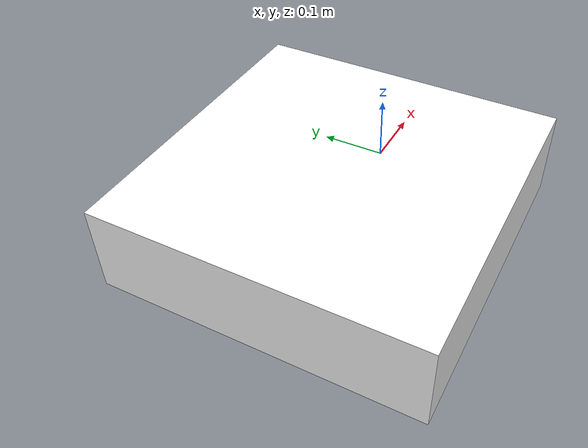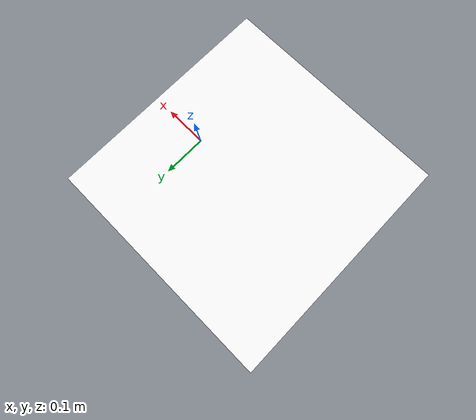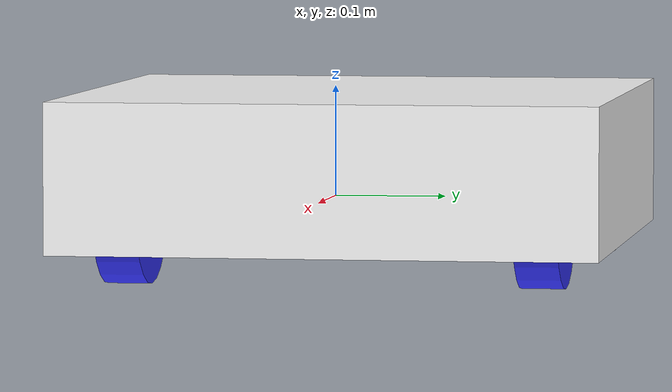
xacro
<?xml version="1.0"?>
<robot xmlns:xacro="http://www.ros.org/wiki/xacro" >

    <xacro:include filename="inertial_macros.xacro" />

    <material name="white">
        <color rgba="1 1 1 1" />
    </material>

    <material name="orange">
        <color rgba="1 0.3 0.1 1" />
    </material>

    <material name="blue">
        <color rgba="0.2 0.2 1 1" />
    </material>

    <material name="black">
        <color rgba="0 0 0 1" />
    </material>

    <material name="red">
        <color rgba="1 0 0 1" />
    </material>

    <!-- ROBOT PARAMETERS -->

    <xacro:property name="wheel_radius" value="0.0825"/>
    <xacro:property name="wheel_thickness" value="0.04"/>
    <xacro:property name="wheel_mass" value="2.0"/>
    <xacro:property name="wheel_offset_x" value="0.1"/>
    <xacro:property name="wheel_offset_y" value="0.19"/>
    <xacro:property name="wheel_offset_z" value="0.05"/>
    <xacro:property name="chassis_height" value="0.138"/>
    <xacro:property name="chassis_length" value="0.5"/>
    <xacro:property name="chassis_width" value="0.5"/>
    <xacro:property name="chassis_mass" value="1.5"/>
    <xacro:property name="caster_wheel_radius" value="0.03"/>
    <xacro:property name="caster_wheel_mass" value="1.0"/>
    <xacro:property name="caster_wheel_offset_x" value="0.45"/>
    <xacro:property name="caster_wheel_offset_y" value="0.20"/>
    <xacro:property name="caster_wheel_offset_z" value="${wheel_offset_z - wheel_radius + caster_wheel_radius}"/>

    <!-- BASE LINK -->

    <link name="base_link">

    </link>

    <!-- BASE FOOTPRINT LINK -->

    <joint name="base_footprint_joint" type="fixed">
        <parent link="base_link"/>
        <child link="base_footprint"/>
        <origin xyz="0 0 0" rpy="0 0 0 "/>
    </joint>

    <link name="base_footprint">
    </link>

    <!-- CHASSIS LINK -->

    <joint name="chassis_joint" type="fixed">
        <parent link="base_link"/>
        <child link="chassis"/>
        <origin xyz="${wheel_offset_x} 0 -${wheel_offset_z}"/>
    </joint>

    <link name="chassis">
        <visual>
            <origin xyz = "-${chassis_length/2} 0 ${chassis_height/2}"/>
            <geometry>
                <box size="${chassis_length} ${chassis_width} ${chassis_height}"/>
            </geometry>
            <material name="white"/>
        </visual>
     <collision>
            <origin xyz = "-${chassis_length/2} 0 ${chassis_height/2}"/>
            <geometry>
                <box size="${chassis_length} ${chassis_width} ${chassis_height}"/>
            </geometry>
        </collision>
        <xacro:inertial_box mass="${chassis_mass}" x="${chassis_length}" y="${chassis_width}" z="${chassis_height}">
            <origin xyz="-${chassis_length/2} 0 ${chassis_height/2}" rpy="0 0 0"/>
        </xacro:inertial_box>
    </link>

    <gazebo reference="chassis">
        <material>Gazebo/White</material>
    </gazebo>

    <!-- LEFT WHEEL LINK -->

    <joint name="left_wheel_joint" type="continuous">
        <parent link="base_link"/>
        <child link="left_wheel"/>
        <origin xyz="0 ${wheel_offset_y} 0" rpy="-${pi/2} 0 0"/>
        <axis xyz="0 0 1"/>
    </joint>

    <link name="left_wheel">
        <visual>
            <geometry>
                <cylinder radius="${wheel_radius}" length="${wheel_thickness}"/>
            </geometry>
            <material name="blue"/>
        </visual>
         <collision>
            <geometry>
                <sphere radius="${wheel_radius}"/>
            </geometry>
        </collision>
        <xacro:inertial_cylinder mass="${wheel_mass}" length="${wheel_thickness}" radius="${wheel_radius}">
            <origin xyz="0 0 0" rpy="0 0 0 "/>
        </xacro:inertial_cylinder>
    </link>

    <gazebo reference="left_wheel">
        <material>Gazebo/Blue</material>
    </gazebo>

    <!-- RIGHT WHEEL LINK -->

    <joint name="right_wheel_joint" type="continuous">
        <parent link="base_link"/>
        <child link="right_wheel"/>
        <origin xyz="0 -${wheel_offset_y} 0" rpy="${pi/2} 0 0"/>
        <axis xyz="0 0 -1"/>
    </joint>

    <link name="right_wheel">
        <visual>
            <geometry>
                <cylinder radius="${wheel_radius}" length="${wheel_thickness}"/>
            </geometry>
            <material name="blue"/>
        </visual>
        <collision>
            <geometry>
                <sphere radius="${wheel_radius}"/>
            </geometry>
        </collision>
        <xacro:inertial_cylinder mass="${wheel_mass}" length="${wheel_thickness}" radius="${wheel_radius}">
            <origin xyz="0 0 0" rpy="0 0 0 "/>
        </xacro:inertial_cylinder>
    </link>

    <gazebo reference="right_wheel">
        <material>Gazebo/Blue</material>
    </gazebo>

    <!-- LEFT CASTER WHEEL -->

    <joint name="left_caster_wheel_joint" type="fixed">
        <parent link="chassis"/>
        <child link="left_caster_wheel"/>
        <origin xyz="-${caster_wheel_offset_x} ${caster_wheel_offset_y} ${caster_wheel_offset_z}"/>
    </joint>

    <link name="left_caster_wheel">
        <visual>
            <geometry>
                <sphere radius="${caster_wheel_radius}"/>
            </geometry>
            <material name="black"/>
        </visual>
        <collision>
            <geometry>
                <sphere radius="${caster_wheel_radius}"/>
            </geometry>
        </collision>
        <xacro:inertial_sphere mass="${caster_wheel_mass}" radius="${caster_wheel_radius}">
            <origin xyz="0 0 0" rpy="0 0 0 "/>
        </xacro:inertial_sphere>
    </link>

    <gazebo reference="left_caster_wheel">
        <material>Gazebo/Black</material>
        <mu1 value="0.001"/>
        <mu2 value="0.001"/>
    </gazebo>

    <!-- RIGHT CASTER WHEEL -->

    <joint name="right_caster_wheel_joint" type="fixed">
        <parent link="chassis"/>
        <child link="right_caster_wheel"/>
        <origin xyz="-${caster_wheel_offset_x} -${caster_wheel_offset_y} ${caster_wheel_offset_z}"/>
    </joint>

    <link name="right_caster_wheel">
        <visual>
            <geometry>
                <sphere radius="${caster_wheel_radius}"/>
            </geometry>
            <material name="black"/>
        </visual>
        <collision>
            <geometry>
                <sphere radius="${caster_wheel_radius}"/>
            </geometry>
        </collision>
        <xacro:inertial_sphere mass="${caster_wheel_mass}" radius="${caster_wheel_radius}">
            <origin xyz="0 0 0" rpy="0 0 0 "/>
        </xacro:inertial_sphere>
    </link>

    <gazebo reference="right_caster_wheel">
        <material>Gazebo/Black</material>
        <mu1 value="0.001"/>
        <mu2 value="0.001"/>
    </gazebo>

</robot>
